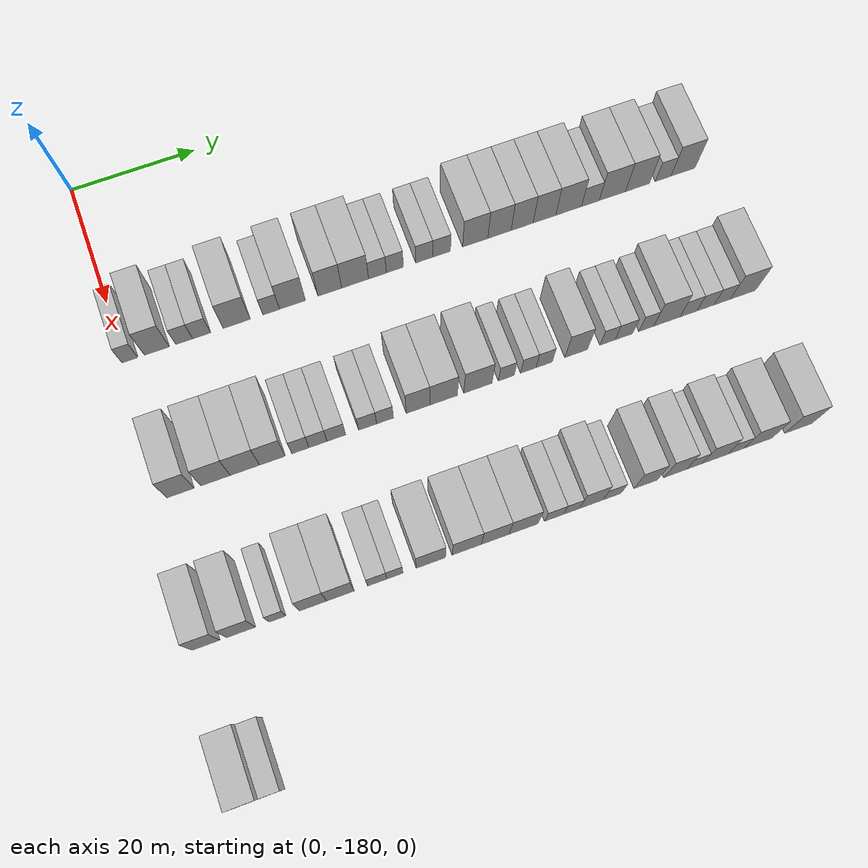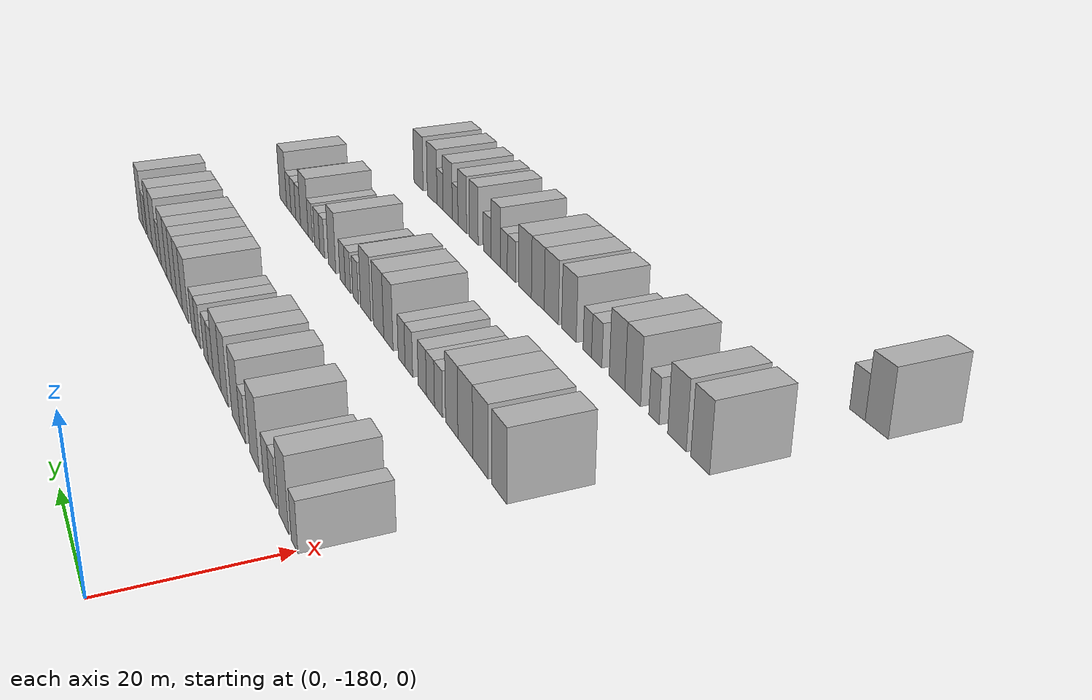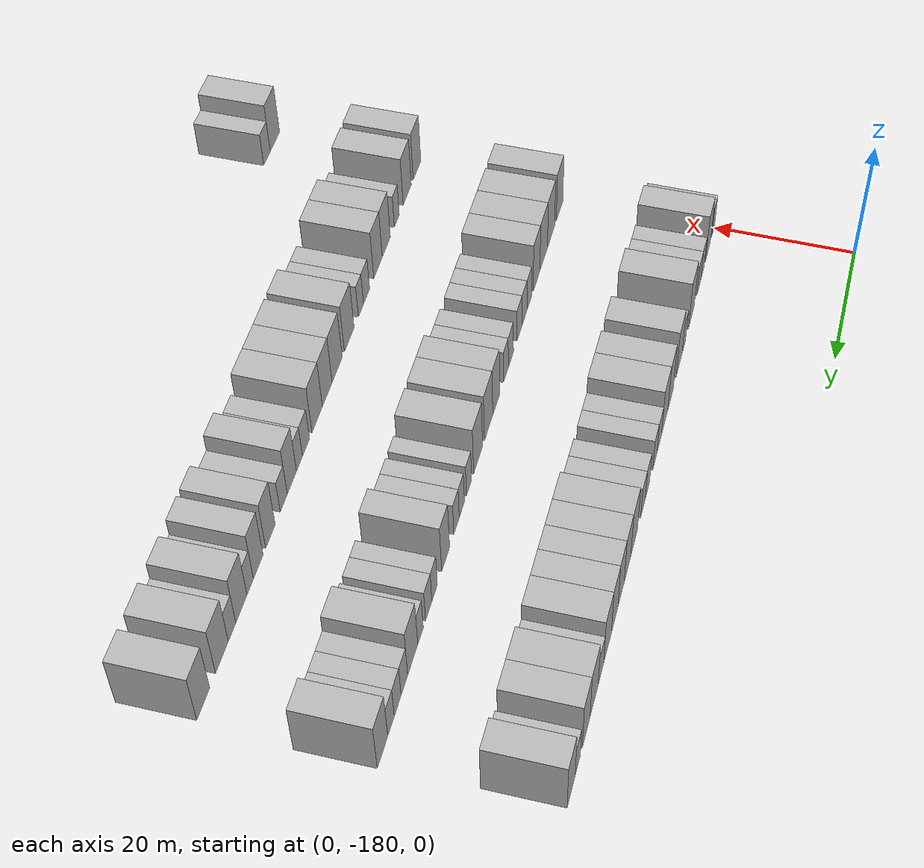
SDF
<sdf version="1.6">
 <world name="default">
  <model name="building_44">
   <static>1</static>
   <pose>25.0000 -179.2464 0 0.000000 0.000000 0.000000</pose>
   <link name="link">
    <pose>0 0 3.00 0 0 0</pose>
    <collision name="collision"><geometry><box><size>10.0000 2.4708 6.0000</size></box></geometry></collision>
    <visual name="visual">
     <cast_shadows>0</cast_shadows>
     <geometry><box><size>10.0000 2.4708 6.0000</size></box></geometry>
     <material>
      <script>
       <uri>model://HANNAS_wall/materials/scripts</uri>
       <uri>model://HANNAS_wall/materials/textures</uri>
       <name>vrc/HANNAS_wall</name>
      </script>
     </material>
    </visual>
   </link>
  </model>
  <model name="building_45">
   <static>1</static>
   <pose>25.0000 -175.0655 0 0.000000 0.000000 0.000000</pose>
   <link name="link">
    <pose>0 0 4.50 0 0 0</pose>
    <collision name="collision"><geometry><box><size>10.0000 3.8910 9.0000</size></box></geometry></collision>
    <visual name="visual">
     <cast_shadows>0</cast_shadows>
     <geometry><box><size>10.0000 3.8910 9.0000</size></box></geometry>
     <material>
      <script>
       <uri>model://HANNAS_wall/materials/scripts</uri>
       <uri>model://HANNAS_wall/materials/textures</uri>
       <name>vrc/HANNAS_wall</name>
      </script>
     </material>
    </visual>
   </link>
  </model>
  <model name="building_46">
   <static>1</static>
   <pose>25.0000 -170.7973 0 0.000000 0.000000 0.000000</pose>
   <link name="link">
    <pose>0 0 3.00 0 0 0</pose>
    <collision name="collision"><geometry><box><size>10.0000 2.6455 6.0000</size></box></geometry></collision>
    <visual name="visual">
     <cast_shadows>0</cast_shadows>
     <geometry><box><size>10.0000 2.6455 6.0000</size></box></geometry>
     <material>
      <script>
       <uri>model://HANNAS_wall/materials/scripts</uri>
       <uri>model://HANNAS_wall/materials/textures</uri>
       <name>vrc/HANNAS_wall</name>
      </script>
     </material>
    </visual>
   </link>
  </model>
  <model name="building_47">
   <static>1</static>
   <pose>25.0000 -168.0712 0 0.000000 0.000000 0.000000</pose>
   <link name="link">
    <pose>0 0 3.00 0 0 0</pose>
    <collision name="collision"><geometry><box><size>10.0000 2.8067 6.0000</size></box></geometry></collision>
    <visual name="visual">
     <cast_shadows>0</cast_shadows>
     <geometry><box><size>10.0000 2.8067 6.0000</size></box></geometry>
     <material>
      <script>
       <uri>model://HANNAS_wall/materials/scripts</uri>
       <uri>model://HANNAS_wall/materials/textures</uri>
       <name>vrc/HANNAS_wall</name>
      </script>
     </material>
    </visual>
   </link>
  </model>
  <model name="building_48">
   <static>1</static>
   <pose>25.0000 -162.5393 0 0.000000 0.000000 0.000000</pose>
   <link name="link">
    <pose>0 0 4.50 0 0 0</pose>
    <collision name="collision"><geometry><box><size>10.0000 4.2570 9.0000</size></box></geometry></collision>
    <visual name="visual">
     <cast_shadows>0</cast_shadows>
     <geometry><box><size>10.0000 4.2570 9.0000</size></box></geometry>
     <material>
      <script>
       <uri>model://HANNAS_wall/materials/scripts</uri>
       <uri>model://HANNAS_wall/materials/textures</uri>
       <name>vrc/HANNAS_wall</name>
      </script>
     </material>
    </visual>
   </link>
  </model>
  <model name="building_49">
   <static>1</static>
   <pose>25.0000 -157.0925 0 0.000000 0.000000 0.000000</pose>
   <link name="link">
    <pose>0 0 3.00 0 0 0</pose>
    <collision name="collision"><geometry><box><size>10.0000 2.6367 6.0000</size></box></geometry></collision>
    <visual name="visual">
     <cast_shadows>0</cast_shadows>
     <geometry><box><size>10.0000 2.6367 6.0000</size></box></geometry>
     <material>
      <script>
       <uri>model://HANNAS_wall/materials/scripts</uri>
       <uri>model://HANNAS_wall/materials/textures</uri>
       <name>vrc/HANNAS_wall</name>
      </script>
     </material>
    </visual>
   </link>
  </model>
  <model name="building_50">
   <static>1</static>
   <pose>25.0000 -153.7104 0 0.000000 0.000000 0.000000</pose>
   <link name="link">
    <pose>0 0 4.50 0 0 0</pose>
    <collision name="collision"><geometry><box><size>10.0000 4.1275 9.0000</size></box></geometry></collision>
    <visual name="visual">
     <cast_shadows>0</cast_shadows>
     <geometry><box><size>10.0000 4.1275 9.0000</size></box></geometry>
     <material>
      <script>
       <uri>model://HANNAS_wall/materials/scripts</uri>
       <uri>model://HANNAS_wall/materials/textures</uri>
       <name>vrc/HANNAS_wall</name>
      </script>
     </material>
    </visual>
   </link>
  </model>
  <model name="building_51">
   <static>1</static>
   <pose>25.0000 -147.7489 0 0.000000 0.000000 0.000000</pose>
   <link name="link">
    <pose>0 0 4.50 0 0 0</pose>
    <collision name="collision"><geometry><box><size>10.0000 3.7956 9.0000</size></box></geometry></collision>
    <visual name="visual">
     <cast_shadows>0</cast_shadows>
     <geometry><box><size>10.0000 3.7956 9.0000</size></box></geometry>
     <material>
      <script>
       <uri>model://HANNAS_wall/materials/scripts</uri>
       <uri>model://HANNAS_wall/materials/textures</uri>
       <name>vrc/HANNAS_wall</name>
      </script>
     </material>
    </visual>
   </link>
  </model>
  <model name="building_52">
   <static>1</static>
   <pose>25.0000 -143.6865 0 0.000000 0.000000 0.000000</pose>
   <link name="link">
    <pose>0 0 4.50 0 0 0</pose>
    <collision name="collision"><geometry><box><size>10.0000 4.3292 9.0000</size></box></geometry></collision>
    <visual name="visual">
     <cast_shadows>0</cast_shadows>
     <geometry><box><size>10.0000 4.3292 9.0000</size></box></geometry>
     <material>
      <script>
       <uri>model://HANNAS_wall/materials/scripts</uri>
       <uri>model://HANNAS_wall/materials/textures</uri>
       <name>vrc/HANNAS_wall</name>
      </script>
     </material>
    </visual>
   </link>
  </model>
  <model name="building_53">
   <static>1</static>
   <pose>25.0000 -140.0865 0 0.000000 0.000000 0.000000</pose>
   <link name="link">
    <pose>0 0 3.00 0 0 0</pose>
    <collision name="collision"><geometry><box><size>10.0000 2.8708 6.0000</size></box></geometry></collision>
    <visual name="visual">
     <cast_shadows>0</cast_shadows>
     <geometry><box><size>10.0000 2.8708 6.0000</size></box></geometry>
     <material>
      <script>
       <uri>model://HANNAS_wall/materials/scripts</uri>
       <uri>model://HANNAS_wall/materials/textures</uri>
       <name>vrc/HANNAS_wall</name>
      </script>
     </material>
    </visual>
   </link>
  </model>
  <model name="building_54">
   <static>1</static>
   <pose>25.0000 -137.2738 0 0.000000 0.000000 0.000000</pose>
   <link name="link">
    <pose>0 0 3.00 0 0 0</pose>
    <collision name="collision"><geometry><box><size>10.0000 2.7546 6.0000</size></box></geometry></collision>
    <visual name="visual">
     <cast_shadows>0</cast_shadows>
     <geometry><box><size>10.0000 2.7546 6.0000</size></box></geometry>
     <material>
      <script>
       <uri>model://HANNAS_wall/materials/scripts</uri>
       <uri>model://HANNAS_wall/materials/textures</uri>
       <name>vrc/HANNAS_wall</name>
      </script>
     </material>
    </visual>
   </link>
  </model>
  <model name="building_55">
   <static>1</static>
   <pose>25.0000 -132.5100 0 0.000000 0.000000 0.000000</pose>
   <link name="link">
    <pose>0 0 3.00 0 0 0</pose>
    <collision name="collision"><geometry><box><size>10.0000 2.7731 6.0000</size></box></geometry></collision>
    <visual name="visual">
     <cast_shadows>0</cast_shadows>
     <geometry><box><size>10.0000 2.7731 6.0000</size></box></geometry>
     <material>
      <script>
       <uri>model://HANNAS_wall/materials/scripts</uri>
       <uri>model://HANNAS_wall/materials/textures</uri>
       <name>vrc/HANNAS_wall</name>
      </script>
     </material>
    </visual>
   </link>
  </model>
  <model name="building_56">
   <static>1</static>
   <pose>25.0000 -129.6807 0 0.000000 0.000000 0.000000</pose>
   <link name="link">
    <pose>0 0 3.00 0 0 0</pose>
    <collision name="collision"><geometry><box><size>10.0000 2.8855 6.0000</size></box></geometry></collision>
    <visual name="visual">
     <cast_shadows>0</cast_shadows>
     <geometry><box><size>10.0000 2.8855 6.0000</size></box></geometry>
     <material>
      <script>
       <uri>model://HANNAS_wall/materials/scripts</uri>
       <uri>model://HANNAS_wall/materials/textures</uri>
       <name>vrc/HANNAS_wall</name>
      </script>
     </material>
    </visual>
   </link>
  </model>
  <model name="building_57">
   <static>1</static>
   <pose>25.0000 -124.1645 0 0.000000 0.000000 0.000000</pose>
   <link name="link">
    <pose>0 0 4.50 0 0 0</pose>
    <collision name="collision"><geometry><box><size>10.0000 4.1467 9.0000</size></box></geometry></collision>
    <visual name="visual">
     <cast_shadows>0</cast_shadows>
     <geometry><box><size>10.0000 4.1467 9.0000</size></box></geometry>
     <material>
      <script>
       <uri>model://HANNAS_wall/materials/scripts</uri>
       <uri>model://HANNAS_wall/materials/textures</uri>
       <name>vrc/HANNAS_wall</name>
      </script>
     </material>
    </visual>
   </link>
  </model>
  <model name="building_58">
   <static>1</static>
   <pose>25.0000 -120.1654 0 0.000000 0.000000 0.000000</pose>
   <link name="link">
    <pose>0 0 4.50 0 0 0</pose>
    <collision name="collision"><geometry><box><size>10.0000 3.8517 9.0000</size></box></geometry></collision>
    <visual name="visual">
     <cast_shadows>0</cast_shadows>
     <geometry><box><size>10.0000 3.8517 9.0000</size></box></geometry>
     <material>
      <script>
       <uri>model://HANNAS_wall/materials/scripts</uri>
       <uri>model://HANNAS_wall/materials/textures</uri>
       <name>vrc/HANNAS_wall</name>
      </script>
     </material>
    </visual>
   </link>
  </model>
  <model name="building_59">
   <static>1</static>
   <pose>25.0000 -116.4288 0 0.000000 0.000000 0.000000</pose>
   <link name="link">
    <pose>0 0 4.50 0 0 0</pose>
    <collision name="collision"><geometry><box><size>10.0000 3.6215 9.0000</size></box></geometry></collision>
    <visual name="visual">
     <cast_shadows>0</cast_shadows>
     <geometry><box><size>10.0000 3.6215 9.0000</size></box></geometry>
     <material>
      <script>
       <uri>model://HANNAS_wall/materials/scripts</uri>
       <uri>model://HANNAS_wall/materials/textures</uri>
       <name>vrc/HANNAS_wall</name>
      </script>
     </material>
    </visual>
   </link>
  </model>
  <model name="building_60">
   <static>1</static>
   <pose>25.0000 -112.7435 0 0.000000 0.000000 0.000000</pose>
   <link name="link">
    <pose>0 0 4.50 0 0 0</pose>
    <collision name="collision"><geometry><box><size>10.0000 3.7490 9.0000</size></box></geometry></collision>
    <visual name="visual">
     <cast_shadows>0</cast_shadows>
     <geometry><box><size>10.0000 3.7490 9.0000</size></box></geometry>
     <material>
      <script>
       <uri>model://HANNAS_wall/materials/scripts</uri>
       <uri>model://HANNAS_wall/materials/textures</uri>
       <name>vrc/HANNAS_wall</name>
      </script>
     </material>
    </visual>
   </link>
  </model>
  <model name="building_61">
   <static>1</static>
   <pose>25.0000 -108.7224 0 0.000000 0.000000 0.000000</pose>
   <link name="link">
    <pose>0 0 4.50 0 0 0</pose>
    <collision name="collision"><geometry><box><size>10.0000 4.2933 9.0000</size></box></geometry></collision>
    <visual name="visual">
     <cast_shadows>0</cast_shadows>
     <geometry><box><size>10.0000 4.2933 9.0000</size></box></geometry>
     <material>
      <script>
       <uri>model://HANNAS_wall/materials/scripts</uri>
       <uri>model://HANNAS_wall/materials/textures</uri>
       <name>vrc/HANNAS_wall</name>
      </script>
     </material>
    </visual>
   </link>
  </model>
  <model name="building_62">
   <static>1</static>
   <pose>25.0000 -105.0860 0 0.000000 0.000000 0.000000</pose>
   <link name="link">
    <pose>0 0 3.00 0 0 0</pose>
    <collision name="collision"><geometry><box><size>10.0000 2.9794 6.0000</size></box></geometry></collision>
    <visual name="visual">
     <cast_shadows>0</cast_shadows>
     <geometry><box><size>10.0000 2.9794 6.0000</size></box></geometry>
     <material>
      <script>
       <uri>model://HANNAS_wall/materials/scripts</uri>
       <uri>model://HANNAS_wall/materials/textures</uri>
       <name>vrc/HANNAS_wall</name>
      </script>
     </material>
    </visual>
   </link>
  </model>
  <model name="building_63">
   <static>1</static>
   <pose>25.0000 -101.3953 0 0.000000 0.000000 0.000000</pose>
   <link name="link">
    <pose>0 0 4.50 0 0 0</pose>
    <collision name="collision"><geometry><box><size>10.0000 4.4021 9.0000</size></box></geometry></collision>
    <visual name="visual">
     <cast_shadows>0</cast_shadows>
     <geometry><box><size>10.0000 4.4021 9.0000</size></box></geometry>
     <material>
      <script>
       <uri>model://HANNAS_wall/materials/scripts</uri>
       <uri>model://HANNAS_wall/materials/textures</uri>
       <name>vrc/HANNAS_wall</name>
      </script>
     </material>
    </visual>
   </link>
  </model>
  <model name="building_64">
   <static>1</static>
   <pose>25.0000 -97.1617 0 0.000000 0.000000 0.000000</pose>
   <link name="link">
    <pose>0 0 4.50 0 0 0</pose>
    <collision name="collision"><geometry><box><size>10.0000 4.0650 9.0000</size></box></geometry></collision>
    <visual name="visual">
     <cast_shadows>0</cast_shadows>
     <geometry><box><size>10.0000 4.0650 9.0000</size></box></geometry>
     <material>
      <script>
       <uri>model://HANNAS_wall/materials/scripts</uri>
       <uri>model://HANNAS_wall/materials/textures</uri>
       <name>vrc/HANNAS_wall</name>
      </script>
     </material>
    </visual>
   </link>
  </model>
  <model name="building_65">
   <static>1</static>
   <pose>25.0000 -92.8101 0 0.000000 0.000000 0.000000</pose>
   <link name="link">
    <pose>0 0 3.00 0 0 0</pose>
    <collision name="collision"><geometry><box><size>10.0000 2.6382 6.0000</size></box></geometry></collision>
    <visual name="visual">
     <cast_shadows>0</cast_shadows>
     <geometry><box><size>10.0000 2.6382 6.0000</size></box></geometry>
     <material>
      <script>
       <uri>model://HANNAS_wall/materials/scripts</uri>
       <uri>model://HANNAS_wall/materials/textures</uri>
       <name>vrc/HANNAS_wall</name>
      </script>
     </material>
    </visual>
   </link>
  </model>
  <model name="building_66">
   <static>1</static>
   <pose>25.0000 -89.4407 0 0.000000 0.000000 0.000000</pose>
   <link name="link">
    <pose>0 0 4.50 0 0 0</pose>
    <collision name="collision"><geometry><box><size>10.0000 4.1007 9.0000</size></box></geometry></collision>
    <visual name="visual">
     <cast_shadows>0</cast_shadows>
     <geometry><box><size>10.0000 4.1007 9.0000</size></box></geometry>
     <material>
      <script>
       <uri>model://HANNAS_wall/materials/scripts</uri>
       <uri>model://HANNAS_wall/materials/textures</uri>
       <name>vrc/HANNAS_wall</name>
      </script>
     </material>
    </visual>
   </link>
  </model>
  <model name="building_232">
   <static>1</static>
   <pose>47.0000 -178.0248 0 0.000000 0.000000 0.000000</pose>
   <link name="link">
    <pose>0 0 4.50 0 0 0</pose>
    <collision name="collision"><geometry><box><size>10.0000 4.0981 9.0000</size></box></geometry></collision>
    <visual name="visual">
     <cast_shadows>0</cast_shadows>
     <geometry><box><size>10.0000 4.0981 9.0000</size></box></geometry>
     <material>
      <script>
       <uri>model://HANNAS_wall/materials/scripts</uri>
       <uri>model://HANNAS_wall/materials/textures</uri>
       <name>vrc/HANNAS_wall</name>
      </script>
     </material>
    </visual>
   </link>
  </model>
  <model name="building_233">
   <static>1</static>
   <pose>47.0000 -172.7497 0 0.000000 0.000000 0.000000</pose>
   <link name="link">
    <pose>0 0 4.50 0 0 0</pose>
    <collision name="collision"><geometry><box><size>10.0000 4.4521 9.0000</size></box></geometry></collision>
    <visual name="visual">
     <cast_shadows>0</cast_shadows>
     <geometry><box><size>10.0000 4.4521 9.0000</size></box></geometry>
     <material>
      <script>
       <uri>model://HANNAS_wall/materials/scripts</uri>
       <uri>model://HANNAS_wall/materials/textures</uri>
       <name>vrc/HANNAS_wall</name>
      </script>
     </material>
    </visual>
   </link>
  </model>
  <model name="building_234">
   <static>1</static>
   <pose>47.0000 -168.2782 0 0.000000 0.000000 0.000000</pose>
   <link name="link">
    <pose>0 0 4.50 0 0 0</pose>
    <collision name="collision"><geometry><box><size>10.0000 4.4909 9.0000</size></box></geometry></collision>
    <visual name="visual">
     <cast_shadows>0</cast_shadows>
     <geometry><box><size>10.0000 4.4909 9.0000</size></box></geometry>
     <material>
      <script>
       <uri>model://HANNAS_wall/materials/scripts</uri>
       <uri>model://HANNAS_wall/materials/textures</uri>
       <name>vrc/HANNAS_wall</name>
      </script>
     </material>
    </visual>
   </link>
  </model>
  <model name="building_235">
   <static>1</static>
   <pose>47.0000 -164.0686 0 0.000000 0.000000 0.000000</pose>
   <link name="link">
    <pose>0 0 4.50 0 0 0</pose>
    <collision name="collision"><geometry><box><size>10.0000 3.9284 9.0000</size></box></geometry></collision>
    <visual name="visual">
     <cast_shadows>0</cast_shadows>
     <geometry><box><size>10.0000 3.9284 9.0000</size></box></geometry>
     <material>
      <script>
       <uri>model://HANNAS_wall/materials/scripts</uri>
       <uri>model://HANNAS_wall/materials/textures</uri>
       <name>vrc/HANNAS_wall</name>
      </script>
     </material>
    </visual>
   </link>
  </model>
  <model name="building_236">
   <static>1</static>
   <pose>47.0000 -159.7722 0 0.000000 0.000000 0.000000</pose>
   <link name="link">
    <pose>0 0 3.00 0 0 0</pose>
    <collision name="collision"><geometry><box><size>10.0000 2.6645 6.0000</size></box></geometry></collision>
    <visual name="visual">
     <cast_shadows>0</cast_shadows>
     <geometry><box><size>10.0000 2.6645 6.0000</size></box></geometry>
     <material>
      <script>
       <uri>model://HANNAS_wall/materials/scripts</uri>
       <uri>model://HANNAS_wall/materials/textures</uri>
       <name>vrc/HANNAS_wall</name>
      </script>
     </material>
    </visual>
   </link>
  </model>
  <model name="building_237">
   <static>1</static>
   <pose>47.0000 -157.0606 0 0.000000 0.000000 0.000000</pose>
   <link name="link">
    <pose>0 0 3.00 0 0 0</pose>
    <collision name="collision"><geometry><box><size>10.0000 2.7586 6.0000</size></box></geometry></collision>
    <visual name="visual">
     <cast_shadows>0</cast_shadows>
     <geometry><box><size>10.0000 2.7586 6.0000</size></box></geometry>
     <material>
      <script>
       <uri>model://HANNAS_wall/materials/scripts</uri>
       <uri>model://HANNAS_wall/materials/textures</uri>
       <name>vrc/HANNAS_wall</name>
      </script>
     </material>
    </visual>
   </link>
  </model>
  <model name="building_238">
   <static>1</static>
   <pose>47.0000 -154.2403 0 0.000000 0.000000 0.000000</pose>
   <link name="link">
    <pose>0 0 3.00 0 0 0</pose>
    <collision name="collision"><geometry><box><size>10.0000 2.8818 6.0000</size></box></geometry></collision>
    <visual name="visual">
     <cast_shadows>0</cast_shadows>
     <geometry><box><size>10.0000 2.8818 6.0000</size></box></geometry>
     <material>
      <script>
       <uri>model://HANNAS_wall/materials/scripts</uri>
       <uri>model://HANNAS_wall/materials/textures</uri>
       <name>vrc/HANNAS_wall</name>
      </script>
     </material>
    </visual>
   </link>
  </model>
  <model name="building_239">
   <static>1</static>
   <pose>47.0000 -149.3963 0 0.000000 0.000000 0.000000</pose>
   <link name="link">
    <pose>0 0 3.00 0 0 0</pose>
    <collision name="collision"><geometry><box><size>10.0000 2.8061 6.0000</size></box></geometry></collision>
    <visual name="visual">
     <cast_shadows>0</cast_shadows>
     <geometry><box><size>10.0000 2.8061 6.0000</size></box></geometry>
     <material>
      <script>
       <uri>model://HANNAS_wall/materials/scripts</uri>
       <uri>model://HANNAS_wall/materials/textures</uri>
       <name>vrc/HANNAS_wall</name>
      </script>
     </material>
    </visual>
   </link>
  </model>
  <model name="building_240">
   <static>1</static>
   <pose>47.0000 -146.6823 0 0.000000 0.000000 0.000000</pose>
   <link name="link">
    <pose>0 0 3.00 0 0 0</pose>
    <collision name="collision"><geometry><box><size>10.0000 2.6220 6.0000</size></box></geometry></collision>
    <visual name="visual">
     <cast_shadows>0</cast_shadows>
     <geometry><box><size>10.0000 2.6220 6.0000</size></box></geometry>
     <material>
      <script>
       <uri>model://HANNAS_wall/materials/scripts</uri>
       <uri>model://HANNAS_wall/materials/textures</uri>
       <name>vrc/HANNAS_wall</name>
      </script>
     </material>
    </visual>
   </link>
  </model>
  <model name="building_241">
   <static>1</static>
   <pose>47.0000 -141.5136 0 0.000000 0.000000 0.000000</pose>
   <link name="link">
    <pose>0 0 4.50 0 0 0</pose>
    <collision name="collision"><geometry><box><size>10.0000 3.7154 9.0000</size></box></geometry></collision>
    <visual name="visual">
     <cast_shadows>0</cast_shadows>
     <geometry><box><size>10.0000 3.7154 9.0000</size></box></geometry>
     <material>
      <script>
       <uri>model://HANNAS_wall/materials/scripts</uri>
       <uri>model://HANNAS_wall/materials/textures</uri>
       <name>vrc/HANNAS_wall</name>
      </script>
     </material>
    </visual>
   </link>
  </model>
  <model name="building_242">
   <static>1</static>
   <pose>47.0000 -137.4933 0 0.000000 0.000000 0.000000</pose>
   <link name="link">
    <pose>0 0 4.50 0 0 0</pose>
    <collision name="collision"><geometry><box><size>10.0000 4.3251 9.0000</size></box></geometry></collision>
    <visual name="visual">
     <cast_shadows>0</cast_shadows>
     <geometry><box><size>10.0000 4.3251 9.0000</size></box></geometry>
     <material>
      <script>
       <uri>model://HANNAS_wall/materials/scripts</uri>
       <uri>model://HANNAS_wall/materials/textures</uri>
       <name>vrc/HANNAS_wall</name>
      </script>
     </material>
    </visual>
   </link>
  </model>
  <model name="building_243">
   <static>1</static>
   <pose>47.0000 -132.0866 0 0.000000 0.000000 0.000000</pose>
   <link name="link">
    <pose>0 0 4.50 0 0 0</pose>
    <collision name="collision"><geometry><box><size>10.0000 4.4885 9.0000</size></box></geometry></collision>
    <visual name="visual">
     <cast_shadows>0</cast_shadows>
     <geometry><box><size>10.0000 4.4885 9.0000</size></box></geometry>
     <material>
      <script>
       <uri>model://HANNAS_wall/materials/scripts</uri>
       <uri>model://HANNAS_wall/materials/textures</uri>
       <name>vrc/HANNAS_wall</name>
      </script>
     </material>
    </visual>
   </link>
  </model>
  <model name="building_244">
   <static>1</static>
   <pose>47.0000 -127.5743 0 0.000000 0.000000 0.000000</pose>
   <link name="link">
    <pose>0 0 3.00 0 0 0</pose>
    <collision name="collision"><geometry><box><size>10.0000 2.5360 6.0000</size></box></geometry></collision>
    <visual name="visual">
     <cast_shadows>0</cast_shadows>
     <geometry><box><size>10.0000 2.5360 6.0000</size></box></geometry>
     <material>
      <script>
       <uri>model://HANNAS_wall/materials/scripts</uri>
       <uri>model://HANNAS_wall/materials/textures</uri>
       <name>vrc/HANNAS_wall</name>
      </script>
     </material>
    </visual>
   </link>
  </model>
  <model name="building_245">
   <static>1</static>
   <pose>47.0000 -124.0613 0 0.000000 0.000000 0.000000</pose>
   <link name="link">
    <pose>0 0 3.00 0 0 0</pose>
    <collision name="collision"><geometry><box><size>10.0000 2.4901 6.0000</size></box></geometry></collision>
    <visual name="visual">
     <cast_shadows>0</cast_shadows>
     <geometry><box><size>10.0000 2.4901 6.0000</size></box></geometry>
     <material>
      <script>
       <uri>model://HANNAS_wall/materials/scripts</uri>
       <uri>model://HANNAS_wall/materials/textures</uri>
       <name>vrc/HANNAS_wall</name>
      </script>
     </material>
    </visual>
   </link>
  </model>
  <model name="building_246">
   <static>1</static>
   <pose>47.0000 -121.5181 0 0.000000 0.000000 0.000000</pose>
   <link name="link">
    <pose>0 0 3.00 0 0 0</pose>
    <collision name="collision"><geometry><box><size>10.0000 2.5962 6.0000</size></box></geometry></collision>
    <visual name="visual">
     <cast_shadows>0</cast_shadows>
     <geometry><box><size>10.0000 2.5962 6.0000</size></box></geometry>
     <material>
      <script>
       <uri>model://HANNAS_wall/materials/scripts</uri>
       <uri>model://HANNAS_wall/materials/textures</uri>
       <name>vrc/HANNAS_wall</name>
      </script>
     </material>
    </visual>
   </link>
  </model>
  <model name="building_247">
   <static>1</static>
   <pose>47.0000 -116.3852 0 0.000000 0.000000 0.000000</pose>
   <link name="link">
    <pose>0 0 4.50 0 0 0</pose>
    <collision name="collision"><geometry><box><size>10.0000 3.6697 9.0000</size></box></geometry></collision>
    <visual name="visual">
     <cast_shadows>0</cast_shadows>
     <geometry><box><size>10.0000 3.6697 9.0000</size></box></geometry>
     <material>
      <script>
       <uri>model://HANNAS_wall/materials/scripts</uri>
       <uri>model://HANNAS_wall/materials/textures</uri>
       <name>vrc/HANNAS_wall</name>
      </script>
     </material>
    </visual>
   </link>
  </model>
  <model name="building_248">
   <static>1</static>
   <pose>47.0000 -111.3171 0 0.000000 0.000000 0.000000</pose>
   <link name="link">
    <pose>0 0 3.00 0 0 0</pose>
    <collision name="collision"><geometry><box><size>10.0000 2.4664 6.0000</size></box></geometry></collision>
    <visual name="visual">
     <cast_shadows>0</cast_shadows>
     <geometry><box><size>10.0000 2.4664 6.0000</size></box></geometry>
     <material>
      <script>
       <uri>model://HANNAS_wall/materials/scripts</uri>
       <uri>model://HANNAS_wall/materials/textures</uri>
       <name>vrc/HANNAS_wall</name>
      </script>
     </material>
    </visual>
   </link>
  </model>
  <model name="building_249">
   <static>1</static>
   <pose>47.0000 -108.6576 0 0.000000 0.000000 0.000000</pose>
   <link name="link">
    <pose>0 0 3.00 0 0 0</pose>
    <collision name="collision"><geometry><box><size>10.0000 2.8527 6.0000</size></box></geometry></collision>
    <visual name="visual">
     <cast_shadows>0</cast_shadows>
     <geometry><box><size>10.0000 2.8527 6.0000</size></box></geometry>
     <material>
      <script>
       <uri>model://HANNAS_wall/materials/scripts</uri>
       <uri>model://HANNAS_wall/materials/textures</uri>
       <name>vrc/HANNAS_wall</name>
      </script>
     </material>
    </visual>
   </link>
  </model>
  <model name="building_250">
   <static>1</static>
   <pose>47.0000 -105.0234 0 0.000000 0.000000 0.000000</pose>
   <link name="link">
    <pose>0 0 3.00 0 0 0</pose>
    <collision name="collision"><geometry><box><size>10.0000 2.4156 6.0000</size></box></geometry></collision>
    <visual name="visual">
     <cast_shadows>0</cast_shadows>
     <geometry><box><size>10.0000 2.4156 6.0000</size></box></geometry>
     <material>
      <script>
       <uri>model://HANNAS_wall/materials/scripts</uri>
       <uri>model://HANNAS_wall/materials/textures</uri>
       <name>vrc/HANNAS_wall</name>
      </script>
     </material>
    </visual>
   </link>
  </model>
  <model name="building_251">
   <static>1</static>
   <pose>47.0000 -101.6530 0 0.000000 0.000000 0.000000</pose>
   <link name="link">
    <pose>0 0 4.50 0 0 0</pose>
    <collision name="collision"><geometry><box><size>10.0000 4.3253 9.0000</size></box></geometry></collision>
    <visual name="visual">
     <cast_shadows>0</cast_shadows>
     <geometry><box><size>10.0000 4.3253 9.0000</size></box></geometry>
     <material>
      <script>
       <uri>model://HANNAS_wall/materials/scripts</uri>
       <uri>model://HANNAS_wall/materials/textures</uri>
       <name>vrc/HANNAS_wall</name>
      </script>
     </material>
    </visual>
   </link>
  </model>
  <model name="building_252">
   <static>1</static>
   <pose>47.0000 -98.1008 0 0.000000 0.000000 0.000000</pose>
   <link name="link">
    <pose>0 0 3.00 0 0 0</pose>
    <collision name="collision"><geometry><box><size>10.0000 2.7791 6.0000</size></box></geometry></collision>
    <visual name="visual">
     <cast_shadows>0</cast_shadows>
     <geometry><box><size>10.0000 2.7791 6.0000</size></box></geometry>
     <material>
      <script>
       <uri>model://HANNAS_wall/materials/scripts</uri>
       <uri>model://HANNAS_wall/materials/textures</uri>
       <name>vrc/HANNAS_wall</name>
      </script>
     </material>
    </visual>
   </link>
  </model>
  <model name="building_253">
   <static>1</static>
   <pose>47.0000 -95.2939 0 0.000000 0.000000 0.000000</pose>
   <link name="link">
    <pose>0 0 3.00 0 0 0</pose>
    <collision name="collision"><geometry><box><size>10.0000 2.8346 6.0000</size></box></geometry></collision>
    <visual name="visual">
     <cast_shadows>0</cast_shadows>
     <geometry><box><size>10.0000 2.8346 6.0000</size></box></geometry>
     <material>
      <script>
       <uri>model://HANNAS_wall/materials/scripts</uri>
       <uri>model://HANNAS_wall/materials/textures</uri>
       <name>vrc/HANNAS_wall</name>
      </script>
     </material>
    </visual>
   </link>
  </model>
  <model name="building_254">
   <static>1</static>
   <pose>47.0000 -92.5485 0 0.000000 0.000000 0.000000</pose>
   <link name="link">
    <pose>0 0 3.00 0 0 0</pose>
    <collision name="collision"><geometry><box><size>10.0000 2.6563 6.0000</size></box></geometry></collision>
    <visual name="visual">
     <cast_shadows>0</cast_shadows>
     <geometry><box><size>10.0000 2.6563 6.0000</size></box></geometry>
     <material>
      <script>
       <uri>model://HANNAS_wall/materials/scripts</uri>
       <uri>model://HANNAS_wall/materials/textures</uri>
       <name>vrc/HANNAS_wall</name>
      </script>
     </material>
    </visual>
   </link>
  </model>
  <model name="building_255">
   <static>1</static>
   <pose>47.0000 -89.1064 0 0.000000 0.000000 0.000000</pose>
   <link name="link">
    <pose>0 0 4.50 0 0 0</pose>
    <collision name="collision"><geometry><box><size>10.0000 4.2281 9.0000</size></box></geometry></collision>
    <visual name="visual">
     <cast_shadows>0</cast_shadows>
     <geometry><box><size>10.0000 4.2281 9.0000</size></box></geometry>
     <material>
      <script>
       <uri>model://HANNAS_wall/materials/scripts</uri>
       <uri>model://HANNAS_wall/materials/textures</uri>
       <name>vrc/HANNAS_wall</name>
      </script>
     </material>
    </visual>
   </link>
  </model>
  <model name="building_423">
   <static>1</static>
   <pose>69.0000 -180.9718 0 0.000000 0.000000 0.000000</pose>
   <link name="link">
    <pose>0 0 4.50 0 0 0</pose>
    <collision name="collision"><geometry><box><size>10.0000 4.0444 9.0000</size></box></geometry></collision>
    <visual name="visual">
     <cast_shadows>0</cast_shadows>
     <geometry><box><size>10.0000 4.0444 9.0000</size></box></geometry>
     <material>
      <script>
       <uri>model://HANNAS_wall/materials/scripts</uri>
       <uri>model://HANNAS_wall/materials/textures</uri>
       <name>vrc/HANNAS_wall</name>
      </script>
     </material>
    </visual>
   </link>
  </model>
  <model name="building_424">
   <static>1</static>
   <pose>69.0000 -175.8438 0 0.000000 0.000000 0.000000</pose>
   <link name="link">
    <pose>0 0 4.50 0 0 0</pose>
    <collision name="collision"><geometry><box><size>10.0000 4.2116 9.0000</size></box></geometry></collision>
    <visual name="visual">
     <cast_shadows>0</cast_shadows>
     <geometry><box><size>10.0000 4.2116 9.0000</size></box></geometry>
     <material>
      <script>
       <uri>model://HANNAS_wall/materials/scripts</uri>
       <uri>model://HANNAS_wall/materials/textures</uri>
       <name>vrc/HANNAS_wall</name>
      </script>
     </material>
    </visual>
   </link>
  </model>
  <model name="building_425">
   <static>1</static>
   <pose>69.0000 -170.4885 0 0.000000 0.000000 0.000000</pose>
   <link name="link">
    <pose>0 0 3.00 0 0 0</pose>
    <collision name="collision"><geometry><box><size>10.0000 2.4991 6.0000</size></box></geometry></collision>
    <visual name="visual">
     <cast_shadows>0</cast_shadows>
     <geometry><box><size>10.0000 2.4991 6.0000</size></box></geometry>
     <material>
      <script>
       <uri>model://HANNAS_wall/materials/scripts</uri>
       <uri>model://HANNAS_wall/materials/textures</uri>
       <name>vrc/HANNAS_wall</name>
      </script>
     </material>
    </visual>
   </link>
  </model>
  <model name="building_426">
   <static>1</static>
   <pose>69.0000 -165.2278 0 0.000000 0.000000 0.000000</pose>
   <link name="link">
    <pose>0 0 4.50 0 0 0</pose>
    <collision name="collision"><geometry><box><size>10.0000 4.0223 9.0000</size></box></geometry></collision>
    <visual name="visual">
     <cast_shadows>0</cast_shadows>
     <geometry><box><size>10.0000 4.0223 9.0000</size></box></geometry>
     <material>
      <script>
       <uri>model://HANNAS_wall/materials/scripts</uri>
       <uri>model://HANNAS_wall/materials/textures</uri>
       <name>vrc/HANNAS_wall</name>
      </script>
     </material>
    </visual>
   </link>
  </model>
  <model name="building_427">
   <static>1</static>
   <pose>69.0000 -161.1578 0 0.000000 0.000000 0.000000</pose>
   <link name="link">
    <pose>0 0 4.50 0 0 0</pose>
    <collision name="collision"><geometry><box><size>10.0000 4.1177 9.0000</size></box></geometry></collision>
    <visual name="visual">
     <cast_shadows>0</cast_shadows>
     <geometry><box><size>10.0000 4.1177 9.0000</size></box></geometry>
     <material>
      <script>
       <uri>model://HANNAS_wall/materials/scripts</uri>
       <uri>model://HANNAS_wall/materials/textures</uri>
       <name>vrc/HANNAS_wall</name>
      </script>
     </material>
    </visual>
   </link>
  </model>
  <model name="building_428">
   <static>1</static>
   <pose>69.0000 -155.6539 0 0.000000 0.000000 0.000000</pose>
   <link name="link">
    <pose>0 0 3.00 0 0 0</pose>
    <collision name="collision"><geometry><box><size>10.0000 2.8901 6.0000</size></box></geometry></collision>
    <visual name="visual">
     <cast_shadows>0</cast_shadows>
     <geometry><box><size>10.0000 2.8901 6.0000</size></box></geometry>
     <material>
      <script>
       <uri>model://HANNAS_wall/materials/scripts</uri>
       <uri>model://HANNAS_wall/materials/textures</uri>
       <name>vrc/HANNAS_wall</name>
      </script>
     </material>
    </visual>
   </link>
  </model>
  <model name="building_429">
   <static>1</static>
   <pose>69.0000 -153.0000 0 0.000000 0.000000 0.000000</pose>
   <link name="link">
    <pose>0 0 3.00 0 0 0</pose>
    <collision name="collision"><geometry><box><size>10.0000 2.4176 6.0000</size></box></geometry></collision>
    <visual name="visual">
     <cast_shadows>0</cast_shadows>
     <geometry><box><size>10.0000 2.4176 6.0000</size></box></geometry>
     <material>
      <script>
       <uri>model://HANNAS_wall/materials/scripts</uri>
       <uri>model://HANNAS_wall/materials/textures</uri>
       <name>vrc/HANNAS_wall</name>
      </script>
     </material>
    </visual>
   </link>
  </model>
  <model name="building_430">
   <static>1</static>
   <pose>69.0000 -147.5882 0 0.000000 0.000000 0.000000</pose>
   <link name="link">
    <pose>0 0 4.50 0 0 0</pose>
    <collision name="collision"><geometry><box><size>10.0000 4.4061 9.0000</size></box></geometry></collision>
    <visual name="visual">
     <cast_shadows>0</cast_shadows>
     <geometry><box><size>10.0000 4.4061 9.0000</size></box></geometry>
     <material>
      <script>
       <uri>model://HANNAS_wall/materials/scripts</uri>
       <uri>model://HANNAS_wall/materials/textures</uri>
       <name>vrc/HANNAS_wall</name>
      </script>
     </material>
    </visual>
   </link>
  </model>
  <model name="building_431">
   <static>1</static>
   <pose>69.0000 -142.1439 0 0.000000 0.000000 0.000000</pose>
   <link name="link">
    <pose>0 0 4.50 0 0 0</pose>
    <collision name="collision"><geometry><box><size>10.0000 4.4826 9.0000</size></box></geometry></collision>
    <visual name="visual">
     <cast_shadows>0</cast_shadows>
     <geometry><box><size>10.0000 4.4826 9.0000</size></box></geometry>
     <material>
      <script>
       <uri>model://HANNAS_wall/materials/scripts</uri>
       <uri>model://HANNAS_wall/materials/textures</uri>
       <name>vrc/HANNAS_wall</name>
      </script>
     </material>
    </visual>
   </link>
  </model>
  <model name="building_432">
   <static>1</static>
   <pose>69.0000 -137.7886 0 0.000000 0.000000 0.000000</pose>
   <link name="link">
    <pose>0 0 4.50 0 0 0</pose>
    <collision name="collision"><geometry><box><size>10.0000 4.2281 9.0000</size></box></geometry></collision>
    <visual name="visual">
     <cast_shadows>0</cast_shadows>
     <geometry><box><size>10.0000 4.2281 9.0000</size></box></geometry>
     <material>
      <script>
       <uri>model://HANNAS_wall/materials/scripts</uri>
       <uri>model://HANNAS_wall/materials/textures</uri>
       <name>vrc/HANNAS_wall</name>
      </script>
     </material>
    </visual>
   </link>
  </model>
  <model name="building_433">
   <static>1</static>
   <pose>69.0000 -133.4485 0 0.000000 0.000000 0.000000</pose>
   <link name="link">
    <pose>0 0 4.50 0 0 0</pose>
    <collision name="collision"><geometry><box><size>10.0000 4.4521 9.0000</size></box></geometry></collision>
    <visual name="visual">
     <cast_shadows>0</cast_shadows>
     <geometry><box><size>10.0000 4.4521 9.0000</size></box></geometry>
     <material>
      <script>
       <uri>model://HANNAS_wall/materials/scripts</uri>
       <uri>model://HANNAS_wall/materials/textures</uri>
       <name>vrc/HANNAS_wall</name>
      </script>
     </material>
    </visual>
   </link>
  </model>
  <model name="building_434">
   <static>1</static>
   <pose>69.0000 -128.7459 0 0.000000 0.000000 0.000000</pose>
   <link name="link">
    <pose>0 0 3.00 0 0 0</pose>
    <collision name="collision"><geometry><box><size>10.0000 2.9531 6.0000</size></box></geometry></collision>
    <visual name="visual">
     <cast_shadows>0</cast_shadows>
     <geometry><box><size>10.0000 2.9531 6.0000</size></box></geometry>
     <material>
      <script>
       <uri>model://HANNAS_wall/materials/scripts</uri>
       <uri>model://HANNAS_wall/materials/textures</uri>
       <name>vrc/HANNAS_wall</name>
      </script>
     </material>
    </visual>
   </link>
  </model>
  <model name="building_435">
   <static>1</static>
   <pose>69.0000 -126.0372 0 0.000000 0.000000 0.000000</pose>
   <link name="link">
    <pose>0 0 3.00 0 0 0</pose>
    <collision name="collision"><geometry><box><size>10.0000 2.4643 6.0000</size></box></geometry></collision>
    <visual name="visual">
     <cast_shadows>0</cast_shadows>
     <geometry><box><size>10.0000 2.4643 6.0000</size></box></geometry>
     <material>
      <script>
       <uri>model://HANNAS_wall/materials/scripts</uri>
       <uri>model://HANNAS_wall/materials/textures</uri>
       <name>vrc/HANNAS_wall</name>
      </script>
     </material>
    </visual>
   </link>
  </model>
  <model name="building_436">
   <static>1</static>
   <pose>69.0000 -122.9540 0 0.000000 0.000000 0.000000</pose>
   <link name="link">
    <pose>0 0 4.50 0 0 0</pose>
    <collision name="collision"><geometry><box><size>10.0000 3.7019 9.0000</size></box></geometry></collision>
    <visual name="visual">
     <cast_shadows>0</cast_shadows>
     <geometry><box><size>10.0000 3.7019 9.0000</size></box></geometry>
     <material>
      <script>
       <uri>model://HANNAS_wall/materials/scripts</uri>
       <uri>model://HANNAS_wall/materials/textures</uri>
       <name>vrc/HANNAS_wall</name>
      </script>
     </material>
    </visual>
   </link>
  </model>
  <model name="building_437">
   <static>1</static>
   <pose>69.0000 -119.6928 0 0.000000 0.000000 0.000000</pose>
   <link name="link">
    <pose>0 0 3.00 0 0 0</pose>
    <collision name="collision"><geometry><box><size>10.0000 2.8205 6.0000</size></box></geometry></collision>
    <visual name="visual">
     <cast_shadows>0</cast_shadows>
     <geometry><box><size>10.0000 2.8205 6.0000</size></box></geometry>
     <material>
      <script>
       <uri>model://HANNAS_wall/materials/scripts</uri>
       <uri>model://HANNAS_wall/materials/textures</uri>
       <name>vrc/HANNAS_wall</name>
      </script>
     </material>
    </visual>
   </link>
  </model>
  <model name="building_438">
   <static>1</static>
   <pose>69.0000 -114.4483 0 0.000000 0.000000 0.000000</pose>
   <link name="link">
    <pose>0 0 4.50 0 0 0</pose>
    <collision name="collision"><geometry><box><size>10.0000 3.6684 9.0000</size></box></geometry></collision>
    <visual name="visual">
     <cast_shadows>0</cast_shadows>
     <geometry><box><size>10.0000 3.6684 9.0000</size></box></geometry>
     <material>
      <script>
       <uri>model://HANNAS_wall/materials/scripts</uri>
       <uri>model://HANNAS_wall/materials/textures</uri>
       <name>vrc/HANNAS_wall</name>
      </script>
     </material>
    </visual>
   </link>
  </model>
  <model name="building_439">
   <static>1</static>
   <pose>69.0000 -109.7972 0 0.000000 0.000000 0.000000</pose>
   <link name="link">
    <pose>0 0 4.50 0 0 0</pose>
    <collision name="collision"><geometry><box><size>10.0000 3.6338 9.0000</size></box></geometry></collision>
    <visual name="visual">
     <cast_shadows>0</cast_shadows>
     <geometry><box><size>10.0000 3.6338 9.0000</size></box></geometry>
     <material>
      <script>
       <uri>model://HANNAS_wall/materials/scripts</uri>
       <uri>model://HANNAS_wall/materials/textures</uri>
       <name>vrc/HANNAS_wall</name>
      </script>
     </material>
    </visual>
   </link>
  </model>
  <model name="building_440">
   <static>1</static>
   <pose>69.0000 -106.7731 0 0.000000 0.000000 0.000000</pose>
   <link name="link">
    <pose>0 0 3.00 0 0 0</pose>
    <collision name="collision"><geometry><box><size>10.0000 2.4143 6.0000</size></box></geometry></collision>
    <visual name="visual">
     <cast_shadows>0</cast_shadows>
     <geometry><box><size>10.0000 2.4143 6.0000</size></box></geometry>
     <material>
      <script>
       <uri>model://HANNAS_wall/materials/scripts</uri>
       <uri>model://HANNAS_wall/materials/textures</uri>
       <name>vrc/HANNAS_wall</name>
      </script>
     </material>
    </visual>
   </link>
  </model>
  <model name="building_441">
   <static>1</static>
   <pose>69.0000 -103.5354 0 0.000000 0.000000 0.000000</pose>
   <link name="link">
    <pose>0 0 4.50 0 0 0</pose>
    <collision name="collision"><geometry><box><size>10.0000 4.0611 9.0000</size></box></geometry></collision>
    <visual name="visual">
     <cast_shadows>0</cast_shadows>
     <geometry><box><size>10.0000 4.0611 9.0000</size></box></geometry>
     <material>
      <script>
       <uri>model://HANNAS_wall/materials/scripts</uri>
       <uri>model://HANNAS_wall/materials/textures</uri>
       <name>vrc/HANNAS_wall</name>
      </script>
     </material>
    </visual>
   </link>
  </model>
  <model name="building_442">
   <static>1</static>
   <pose>69.0000 -100.1599 0 0.000000 0.000000 0.000000</pose>
   <link name="link">
    <pose>0 0 3.00 0 0 0</pose>
    <collision name="collision"><geometry><box><size>10.0000 2.6899 6.0000</size></box></geometry></collision>
    <visual name="visual">
     <cast_shadows>0</cast_shadows>
     <geometry><box><size>10.0000 2.6899 6.0000</size></box></geometry>
     <material>
      <script>
       <uri>model://HANNAS_wall/materials/scripts</uri>
       <uri>model://HANNAS_wall/materials/textures</uri>
       <name>vrc/HANNAS_wall</name>
      </script>
     </material>
    </visual>
   </link>
  </model>
  <model name="building_443">
   <static>1</static>
   <pose>69.0000 -96.5673 0 0.000000 0.000000 0.000000</pose>
   <link name="link">
    <pose>0 0 4.50 0 0 0</pose>
    <collision name="collision"><geometry><box><size>10.0000 4.4954 9.0000</size></box></geometry></collision>
    <visual name="visual">
     <cast_shadows>0</cast_shadows>
     <geometry><box><size>10.0000 4.4954 9.0000</size></box></geometry>
     <material>
      <script>
       <uri>model://HANNAS_wall/materials/scripts</uri>
       <uri>model://HANNAS_wall/materials/textures</uri>
       <name>vrc/HANNAS_wall</name>
      </script>
     </material>
    </visual>
   </link>
  </model>
  <model name="building_444">
   <static>1</static>
   <pose>69.0000 -90.1072 0 0.000000 0.000000 0.000000</pose>
   <link name="link">
    <pose>0 0 4.50 0 0 0</pose>
    <collision name="collision"><geometry><box><size>10.0000 4.4247 9.0000</size></box></geometry></collision>
    <visual name="visual">
     <cast_shadows>0</cast_shadows>
     <geometry><box><size>10.0000 4.4247 9.0000</size></box></geometry>
     <material>
      <script>
       <uri>model://HANNAS_wall/materials/scripts</uri>
       <uri>model://HANNAS_wall/materials/textures</uri>
       <name>vrc/HANNAS_wall</name>
      </script>
     </material>
    </visual>
   </link>
  </model>
  <model name="building_615">
   <static>1</static>
   <pose>91.0000 -181.7716 0 0.000000 0.000000 0.000000</pose>
   <link name="link">
    <pose>0 0 4.50 0 0 0</pose>
    <collision name="collision"><geometry><box><size>10.0000 4.2916 9.0000</size></box></geometry></collision>
    <visual name="visual">
     <cast_shadows>0</cast_shadows>
     <geometry><box><size>10.0000 4.2916 9.0000</size></box></geometry>
     <material>
      <script>
       <uri>model://HANNAS_wall/materials/scripts</uri>
       <uri>model://HANNAS_wall/materials/textures</uri>
       <name>vrc/HANNAS_wall</name>
      </script>
     </material>
    </visual>
   </link>
  </model>
  <model name="building_616">
   <static>1</static>
   <pose>91.0000 -178.1427 0 0.000000 0.000000 0.000000</pose>
   <link name="link">
    <pose>0 0 3.00 0 0 0</pose>
    <collision name="collision"><geometry><box><size>10.0000 2.9661 6.0000</size></box></geometry></collision>
    <visual name="visual">
     <cast_shadows>0</cast_shadows>
     <geometry><box><size>10.0000 2.9661 6.0000</size></box></geometry>
     <material>
      <script>
       <uri>model://HANNAS_wall/materials/scripts</uri>
       <uri>model://HANNAS_wall/materials/textures</uri>
       <name>vrc/HANNAS_wall</name>
      </script>
     </material>
    </visual>
   </link>
  </model>
 </world>
</sdf>
